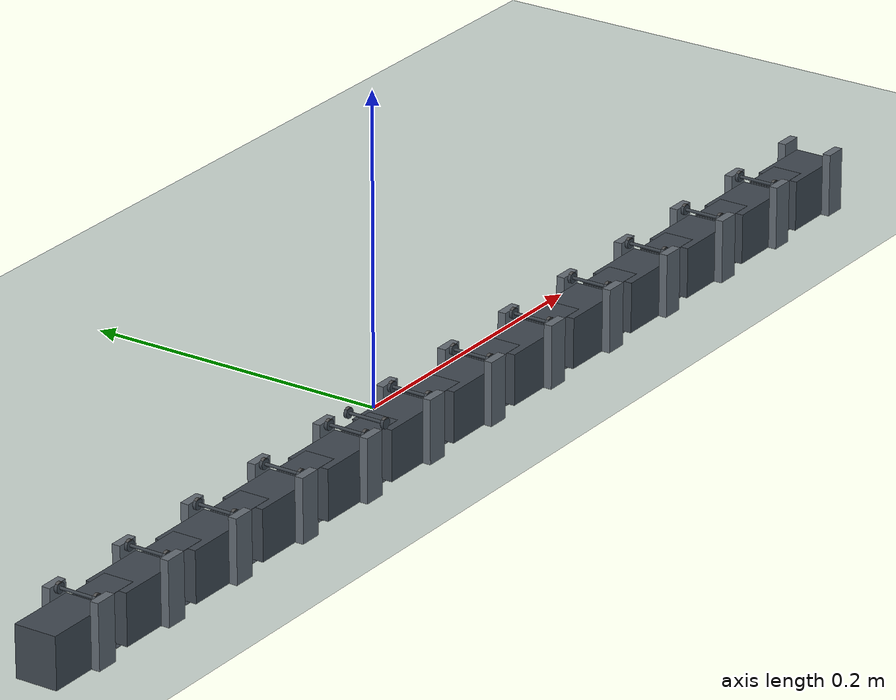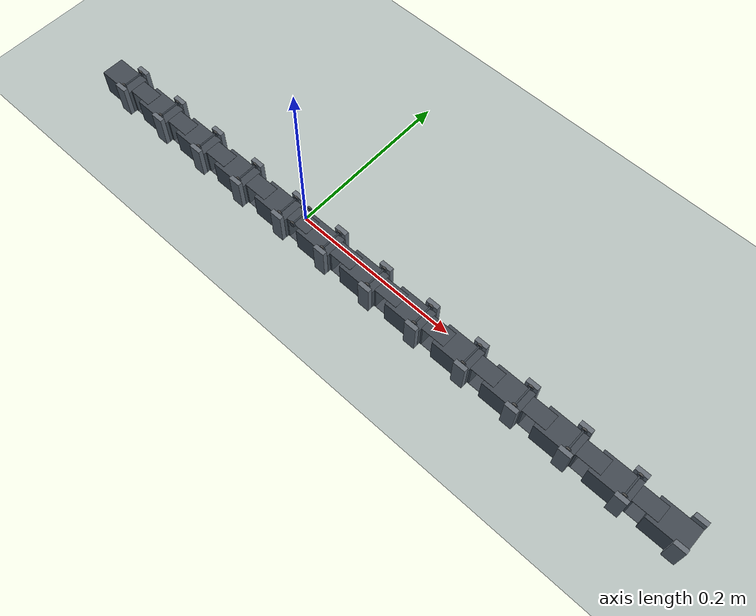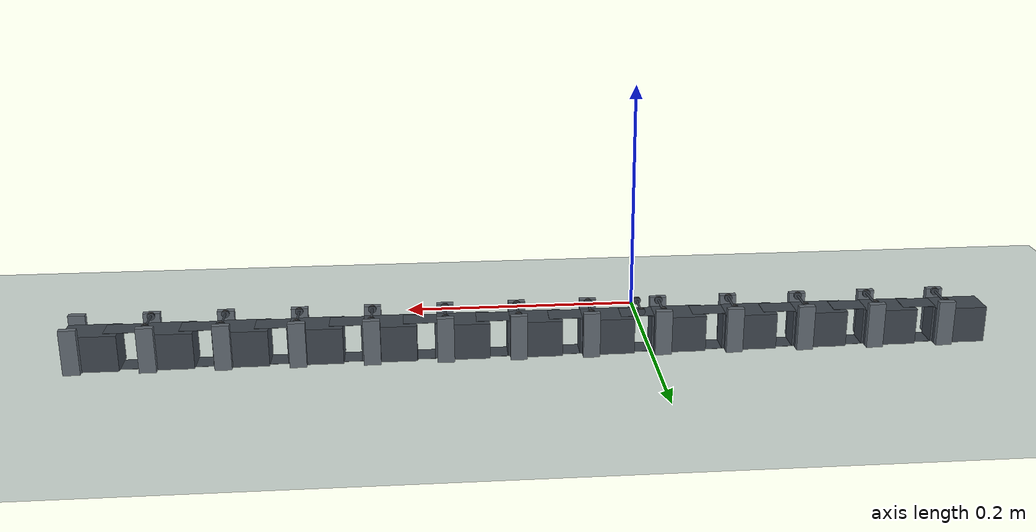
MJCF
<mujoco model="snake scene">
  <include file="snake.xml"/>

  <statistic center="0.3 0 0.4" extent="0.8"/>

  <visual>
    <headlight diffuse="0.6 0.6 0.6" ambient="0.1 0.1 0.1" specular="0 0 0"/>
    <rgba haze="0.15 0.25 0.35 1"/>
    <global azimuth="120" elevation="-20"/>
  </visual>

  <asset>
    <texture type="skybox" builtin="gradient" rgb1="0.3 0.5 0.7" rgb2="0 0 0" width="512" height="3072"/>
    <texture type="2d" name="groundplane" builtin="checker" mark="edge" rgb1="0.2 0.3 0.4" rgb2="0.1 0.2 0.3"
      markrgb="0.8 0.8 0.8" width="300" height="300"/>
    <material name="groundplane" texture="groundplane" texuniform="true" texrepeat="5 5" reflectance="0.2"/>
  </asset>

  <worldbody>
    <light pos="0 0 1.5" dir="0 0 -1" directional="true"/>
    <geom name="floor" size="0 0 0.05" type="plane" material="groundplane"/>
  </worldbody>

</mujoco>

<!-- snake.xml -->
<mujoco model="snake">
  <compiler angle="radian" meshdir="assets" autolimits="true"/>

  <option integrator="implicitfast"/>

  <default>
    <geom friction="3 0.005 0.0001" />
  </default>
  <asset>
    <!-- ナシ -->
  </asset>
  <worldbody>
    <light name="spotlight" mode="targetbodycom" target="frame_0-1" pos="0 -1 2"/>

    <!--  ================= SNAKE ================= /-->
    <body name="frame_0-1" pos="0.5 0 0" quat="0 0 1 0">
      <camera name="track" mode="trackcom" pos="0.5 1 1" xyaxes="-1 0 0 0 -1 1"/>
      <joint type="free"/>
      <geom density="1000" type="box" size=".0235 .014 .01675" pos= ".0235 0 .02675 " rgba="0.3 0.3 0.3 1"  /><!--motor box(head)-->
      <geom density="1000" type="box" size=".0075 .00275 .021" pos= ".0075 -.01675 .0225 " rgba="0.5 0.5 0.5 1" /><!--side box-->
      <geom density="1000" type="box" size=".0075 .00275 .021" pos= ".0075 .01675 .0225 " rgba="0.5 0.5 0.5 1" /><!--side box-->

      <body name="frame0-2" pos="0.5 0 0"  >
      <joint  pos=".0075 -.014 .0035" axis="0 1 0" limited="false" /><!--wheel joint-->
      <geom density="1000" type="cylinder" size=".0035" fromto= ".0075 -.014 .0035 .0075 -.012 .0035" rgba="0.3 0.3 0.3 1" /><!--Left wheel-->
      <geom density="1000" type="cylinder" size=".0035" fromto= ".0075 .014 .0035 .0075 .012 .0035" rgba="0.3 0.3 0.3 1" /><!--Right wheel-->
      <geom density="1000" type="cylinder" size=".001" fromto= ".0075 -.012 .0035 .0075 .012 .0035" rgba="0.3 0.3 0.3 1" /><!--wheel axle-->
      </body>

      <body name="frame1_1" pos="0.035 0 0"  >
        <joint name="Actuator1" pos="0 0 0" axis="0 0 1" limited="true" range="-3 3"/>
        <geom density="1000" type="box" size=".015 .01 .0001" pos= ".015 0 .04355 " rgba="0.3 0.3 0.3 1" /><!--connecter-->
        <geom density="1000" type="box" size=".015 .01 .0001" pos= ".015 0 .00905 " rgba="0.3 0.3 0.3 1" /><!--connecter-->
        <geom density="1000" type="box" size=".001 .01 .01675" pos= ".029 0 .02675 " rgba="0.3 0.3 0.3 1" /><!--connecter-->
        <geom density="1000" type="box" size=".0235 .014 .01675" pos= ".0535 0 .02675 " rgba="0.3 0.3 0.3 1" /><!--motor box-->
        <geom density="1000" type="box" size=".0075 .00275 .021" pos= ".0375 -.01675 .0225 " rgba="0.5 0.5 0.5 1" /><!--side box-->
        <geom density="1000" type="box" size=".0075 .00275 .021" pos= ".0375 .01675 .0225 " rgba="0.5 0.5 0.5 1" /><!--side box-->

        <body name="frame1-2" pos="0.03 0 0"  >
        <joint  pos=".0075 -.014 .0035" axis="0 1 0" limited="false" />
        <geom density="1000" type="cylinder" size=".0035" fromto= ".0075 -.014 .0035 .0075 -.012 .0035" rgba="0.3 0.3 0.3 1" /><!--Left wheel-->
        <geom density="1000" type="cylinder" size=".0035" fromto= ".0075 .014 .0035 .0075 .012 .0035" rgba="0.3 0.3 0.3 1" /><!--Right wheel-->
        <geom density="1000" type="cylinder" size=".001" fromto= ".0075 -.012 .0035 .0075 .012 .0035" rgba="0.3 0.3 0.3 1" /><!--wheel axle-->
        </body>

        <body name="frame2_1" pos="0.065 0 0"  >
          <joint name="Actuator2" pos="0 0 0" axis="0 0 1" limited="true" range="-3 3"/>
          <geom density="1000" type="box" size=".015 .01 .0001" pos= ".015 0 .04355 " rgba="0.3 0.3 0.3 1" /><!--connecter-->
          <geom density="1000" type="box" size=".015 .01 .0001" pos= ".015 0 .00905 " rgba="0.3 0.3 0.3 1" /><!--connecter-->
          <geom density="1000" type="box" size=".001 .01 .01675" pos= ".029 0 .02675 " rgba="0.3 0.3 0.3 1" /><!--connecter-->
          <geom density="1000" type="box" size=".0235 .014 .01675" pos= ".0535 0 .02675 " rgba="0.3 0.3 0.3 1" /><!--motor box-->
          <geom density="1000" type="box" size=".0075 .00275 .021" pos= ".0375 -.01675 .0225 " rgba="0.5 0.5 0.5 1" /><!--side box-->
          <geom density="1000" type="box" size=".0075 .00275 .021" pos= ".0375 .01675 .0225 " rgba="0.5 0.5 0.5 1" /><!--side box-->

          <body name="frame2-2" pos="0.03 0 0"  >
          <joint  pos=".0075 -.014 .0035" axis="0 1 0" limited="false" />
          <geom density="1000" type="cylinder" size=".0035" fromto= ".0075 -.014 .0035 .0075 -.012 .0035" rgba="0.3 0.3 0.3 1" /><!--Left wheel-->
          <geom density="1000" type="cylinder" size=".0035" fromto= ".0075 .014 .0035 .0075 .012 .0035" rgba="0.3 0.3 0.3 1" /><!--Right wheel-->
          <geom density="1000" type="cylinder" size=".001" fromto= ".0075 -.012 .0035 .0075 .012 .0035" rgba="0.3 0.3 0.3 1" /><!--wheel axle-->
          </body>

          <body name="frame3_1" pos="0.065 0 0"  >
            <joint name="Actuator3" pos="0 0 0" axis="0 0 1" limited="true" range="-3 3"/>
            <geom density="1000" type="box" size=".015 .01 .0001" pos= ".015 0 .04355 " rgba="0.3 0.3 0.3 1" /><!--connecter-->
            <geom density="1000" type="box" size=".015 .01 .0001" pos= ".015 0 .00905 " rgba="0.3 0.3 0.3 1" /><!--connecter-->
            <geom density="1000" type="box" size=".001 .01 .01675" pos= ".029 0 .02675 " rgba="0.3 0.3 0.3 1" /><!--connecter-->
            <geom density="1000" type="box" size=".0235 .014 .01675" pos= ".0535 0 .02675 " rgba="0.3 0.3 0.3 1" /><!--motor box-->
            <geom density="1000" type="box" size=".0075 .00275 .021" pos= ".0375 -.01675 .0225 " rgba="0.5 0.5 0.5 1" /><!--side box-->
            <geom density="1000" type="box" size=".0075 .00275 .021" pos= ".0375 .01675 .0225 " rgba="0.5 0.5 0.5 1" /><!--side box-->

            <body name="frame3-2" pos="0.03 0 0"  >
            <joint  pos=".0075 -.014 .0035" axis="0 1 0" limited="false" />
            <geom density="1000" type="cylinder" size=".0035" fromto= ".0075 -.014 .0035 .0075 -.012 .0035" rgba="0.3 0.3 0.3 1" /><!--Left wheel-->
            <geom density="1000" type="cylinder" size=".0035" fromto= ".0075 .014 .0035 .0075 .012 .0035" rgba="0.3 0.3 0.3 1" /><!--Right wheel-->
            <geom density="1000" type="cylinder" size=".001" fromto= ".0075 -.012 .0035 .0075 .012 .0035" rgba="0.3 0.3 0.3 1" /><!--wheel axle-->
            </body>

            <body name="frame4_1" pos="0.065 0 0"  >
              <joint name="Actuator4" pos="0 0 0" axis="0 0 1" limited="true" range="-3 3"/>
              <geom density="1000" type="box" size=".015 .01 .0001" pos= ".015 0 .04355 " rgba="0.3 0.3 0.3 1" /><!--connecter-->
              <geom density="1000" type="box" size=".015 .01 .0001" pos= ".015 0 .00905 " rgba="0.3 0.3 0.3 1" /><!--connecter-->
              <geom density="1000" type="box" size=".001 .01 .01675" pos= ".029 0 .02675 " rgba="0.3 0.3 0.3 1" /><!--connecter-->
              <geom density="1000" type="box" size=".0235 .014 .01675" pos= ".0535 0 .02675 " rgba="0.3 0.3 0.3 1" /><!--motor box-->
              <geom density="1000" type="box" size=".0075 .00275 .021" pos= ".0375 -.01675 .0225 " rgba="0.5 0.5 0.5 1" /><!--side box-->
              <geom density="1000" type="box" size=".0075 .00275 .021" pos= ".0375 .01675 .0225 " rgba="0.5 0.5 0.5 1" /><!--side box-->

              <body name="frame4-2" pos="0.03 0 0"  >
              <joint  pos=".0075 -.014 .0035" axis="0 1 0" limited="false" />
              <geom density="1000" type="cylinder" size=".0035" fromto= ".0075 -.014 .0035 .0075 -.012 .0035" rgba="0.3 0.3 0.3 1" /><!--Left wheel-->
              <geom density="1000" type="cylinder" size=".0035" fromto= ".0075 .014 .0035 .0075 .012 .0035" rgba="0.3 0.3 0.3 1" /><!--Right wheel-->
              <geom density="1000" type="cylinder" size=".001" fromto= ".0075 -.012 .0035 .0075 .012 .0035" rgba="0.3 0.3 0.3 1" /><!--wheel axle-->
              </body>

              <body name="frame5_1" pos="0.065 0 0"  >
                <joint name="Actuator5" pos="0 0 0" axis="0 0 1" limited="true" range="-3 3"/>
                <geom density="1000" type="box" size=".015 .01 .0001" pos= ".015 0 .04355 " rgba="0.3 0.3 0.3 1" /><!--connecter-->
                <geom density="1000" type="box" size=".015 .01 .0001" pos= ".015 0 .00905 " rgba="0.3 0.3 0.3 1" /><!--connecter-->
                <geom density="1000" type="box" size=".001 .01 .01675" pos= ".029 0 .02675 " rgba="0.3 0.3 0.3 1" /><!--connecter-->
                <geom density="1000" type="box" size=".0235 .014 .01675" pos= ".0535 0 .02675 " rgba="0.3 0.3 0.3 1" /><!--motor box-->
                <geom density="1000" type="box" size=".0075 .00275 .021" pos= ".0375 -.01675 .0225 " rgba="0.5 0.5 0.5 1" /><!--side box-->
                <geom density="1000" type="box" size=".0075 .00275 .021" pos= ".0375 .01675 .0225 " rgba="0.5 0.5 0.5 1" /><!--side box-->

                <body name="frame5-2" pos="0.03 0 0"  >
                <joint  pos=".0075 -.014 .0035" axis="0 1 0" limited="false" />
                <geom density="1000" type="cylinder" size=".0035" fromto= ".0075 -.014 .0035 .0075 -.012 .0035" rgba="0.3 0.3 0.3 1" /><!--Left wheel-->
                <geom density="1000" type="cylinder" size=".0035" fromto= ".0075 .014 .0035 .0075 .012 .0035" rgba="0.3 0.3 0.3 1" /><!--Right wheel-->
                <geom density="1000" type="cylinder" size=".001" fromto= ".0075 -.012 .0035 .0075 .012 .0035" rgba="0.3 0.3 0.3 1" /><!--wheel axle-->
                </body>

                <body name="frame6_1" pos="0.065 0 0"  >
                  <joint name="Actuator6" pos="0 0 0" axis="0 0 1" limited="true" range="-3 3"/>
                  <geom density="1000" type="box" size=".015 .01 .0001" pos= ".015 0 .04355 " rgba="0.3 0.3 0.3 1" /><!--connecter-->
                  <geom density="1000" type="box" size=".015 .01 .0001" pos= ".015 0 .00905 " rgba="0.3 0.3 0.3 1" /><!--connecter-->
                  <geom density="1000" type="box" size=".001 .01 .01675" pos= ".029 0 .02675 " rgba="0.3 0.3 0.3 1" /><!--connecter-->
                  <geom density="1000" type="box" size=".0235 .014 .01675" pos= ".0535 0 .02675 " rgba="0.3 0.3 0.3 1" /><!--motor box-->
                  <geom density="1000" type="box" size=".0075 .00275 .021" pos= ".0375 -.01675 .0225 " rgba="0.5 0.5 0.5 1" /><!--side box-->
                  <geom density="1000" type="box" size=".0075 .00275 .021" pos= ".0375 .01675 .0225 " rgba="0.5 0.5 0.5 1" /><!--side box-->

                  <body name="frame6-2" pos="0.03 0 0"  >
                  <joint  pos=".0075 -.014 .0035" axis="0 1 0" limited="false" />
                  <geom density="1000" type="cylinder" size=".0035" fromto= ".0075 -.014 .0035 .0075 -.012 .0035" rgba="0.3 0.3 0.3 1" /><!--Left wheel-->
                  <geom density="1000" type="cylinder" size=".0035" fromto= ".0075 .014 .0035 .0075 .012 .0035" rgba="0.3 0.3 0.3 1" /><!--Right wheel-->
                  <geom density="1000" type="cylinder" size=".001" fromto= ".0075 -.012 .0035 .0075 .012 .0035" rgba="0.3 0.3 0.3 1" /><!--wheel axle-->
                  </body>

                  <body name="frame7_1" pos="0.065 0 0"  >
                    <joint name="Actuator7" pos="0 0 0" axis="0 0 1" limited="true" range="-3 3"/>
                    <geom density="1000" type="box" size=".015 .01 .0001" pos= ".015 0 .04355 " rgba="0.3 0.3 0.3 1" /><!--connecter-->
                    <geom density="1000" type="box" size=".015 .01 .0001" pos= ".015 0 .00905 " rgba="0.3 0.3 0.3 1" /><!--connecter-->
                    <geom density="1000" type="box" size=".001 .01 .01675" pos= ".029 0 .02675 " rgba="0.3 0.3 0.3 1" /><!--connecter-->
                    <geom density="1000" type="box" size=".0235 .014 .01675" pos= ".0535 0 .02675 " rgba="0.3 0.3 0.3 1" /><!--motor box-->
                    <geom density="1000" type="box" size=".0075 .00275 .021" pos= ".0375 -.01675 .0225 " rgba="0.5 0.5 0.5 1" /><!--side box-->
                    <geom density="1000" type="box" size=".0075 .00275 .021" pos= ".0375 .01675 .0225 " rgba="0.5 0.5 0.5 1" /><!--side box-->

                    <body name="frame7-2" pos="0.03 0 0"  >
                    <joint  pos=".0075 -.014 .0035" axis="0 1 0" limited="false" />
                    <geom density="1000" type="cylinder" size=".0035" fromto= ".0075 -.014 .0035 .0075 -.012 .0035" rgba="0.3 0.3 0.3 1" /><!--Left wheel-->
                    <geom density="1000" type="cylinder" size=".0035" fromto= ".0075 .014 .0035 .0075 .012 .0035" rgba="0.3 0.3 0.3 1" /><!--Right wheel-->
                    <geom density="1000" type="cylinder" size=".001" fromto= ".0075 -.012 .0035 .0075 .012 .0035" rgba="0.3 0.3 0.3 1" /><!--wheel axle-->
                    </body>

                    <body name="frame8_1" pos="0.065 0 0"  >
                      <joint name="Actuator8" pos="0 0 0" axis="0 0 1" limited="true" range="-3 3"/>
                      <geom density="1000" type="box" size=".015 .01 .0001" pos= ".015 0 .04355 " rgba="0.3 0.3 0.3 1" /><!--connecter-->
                      <geom density="1000" type="box" size=".015 .01 .0001" pos= ".015 0 .00905 " rgba="0.3 0.3 0.3 1" /><!--connecter-->
                      <geom density="1000" type="box" size=".001 .01 .01675" pos= ".029 0 .02675 " rgba="0.3 0.3 0.3 1" /><!--connecter-->
                      <geom density="1000" type="box" size=".0235 .014 .01675" pos= ".0535 0 .02675 " rgba="0.3 0.3 0.3 1" /><!--motor box-->
                      <geom density="1000" type="box" size=".0075 .00275 .021" pos= ".0375 -.01675 .0225 " rgba="0.5 0.5 0.5 1" /><!--side box-->
                      <geom density="1000" type="box" size=".0075 .00275 .021" pos= ".0375 .01675 .0225 " rgba="0.5 0.5 0.5 1" /><!--side box-->

                      <body name="frame8-2" pos="0.03 0 0"  >
                      <joint  pos=".0075 -.014 .0035" axis="0 1 0" limited="false" />
                      <geom density="1000" type="cylinder" size=".0035" fromto= ".0075 -.014 .0035 .0075 -.012 .0035" rgba="0.3 0.3 0.3 1" /><!--Left wheel-->
                      <geom density="1000" type="cylinder" size=".0035" fromto= ".0075 .014 .0035 .0075 .012 .0035" rgba="0.3 0.3 0.3 1" /><!--Right wheel-->
                      <geom density="1000" type="cylinder" size=".001" fromto= ".0075 -.012 .0035 .0075 .012 .0035" rgba="0.3 0.3 0.3 1" /><!--wheel axle-->
                      </body>

                      <body name="frame9_1" pos="0.065 0 0"  >
                        <joint name="Actuator9" pos="0 0 0" axis="0 0 1" limited="true" range="-3 3"/>
                        <geom density="1000" type="box" size=".015 .01 .0001" pos= ".015 0 .04355 " rgba="0.3 0.3 0.3 1" /><!--connecter-->
                        <geom density="1000" type="box" size=".015 .01 .0001" pos= ".015 0 .00905 " rgba="0.3 0.3 0.3 1" /><!--connecter-->
                        <geom density="1000" type="box" size=".001 .01 .01675" pos= ".029 0 .02675 " rgba="0.3 0.3 0.3 1" /><!--connecter-->
                        <geom density="1000" type="box" size=".0235 .014 .01675" pos= ".0535 0 .02675 " rgba="0.3 0.3 0.3 1" /><!--motor box-->
                        <geom density="1000" type="box" size=".0075 .00275 .021" pos= ".0375 -.01675 .0225 " rgba="0.5 0.5 0.5 1" /><!--side box-->
                        <geom density="1000" type="box" size=".0075 .00275 .021" pos= ".0375 .01675 .0225 " rgba="0.5 0.5 0.5 1" /><!--side box-->

                        <body name="frame9-2" pos="0.03 0 0 " >
                        <joint  pos=".0075 -.014 .0035" axis="0 1 0" limited="false" />
                        <geom density="1000" type="cylinder" size=".0035" fromto= ".0075 -.014 .0035 .0075 -.012 .0035" rgba="0.3 0.3 0.3 1" /><!--Left wheel-->
                        <geom density="1000" type="cylinder" size=".0035" fromto= ".0075 .014 .0035 .0075 .012 .0035" rgba="0.3 0.3 0.3 1" /><!--Right wheel-->
                        <geom density="1000" type="cylinder" size=".001" fromto= ".0075 -.012 .0035 .0075 .012 .0035" rgba="0.3 0.3 0.3 1" /><!--wheel axle-->
                        </body>

                        <body name="frame10_1" pos="0.065 0 0"  >
                          <joint name="Actuator10" pos="0 0 0" axis="0 0 1" limited="true" range="-3 3"/>
                          <geom density="1000" type="box" size=".015 .01 .0001" pos= ".015 0 .04355 " rgba="0.3 0.3 0.3 1" /><!--connecter-->
                          <geom density="1000" type="box" size=".015 .01 .0001" pos= ".015 0 .00905 " rgba="0.3 0.3 0.3 1" /><!--connecter-->
                          <geom density="1000" type="box" size=".001 .01 .01675" pos= ".029 0 .02675 " rgba="0.3 0.3 0.3 1" /><!--connecter-->
                          <geom density="1000" type="box" size=".0235 .014 .01675" pos= ".0535 0 .02675 " rgba="0.3 0.3 0.3 1" /><!--motor box-->
                          <geom density="1000" type="box" size=".0075 .00275 .021" pos= ".0375 -.01675 .0225 " rgba="0.5 0.5 0.5 1" /><!--side box-->
                          <geom density="1000" type="box" size=".0075 .00275 .021" pos= ".0375 .01675 .0225 " rgba="0.5 0.5 0.5 1" /><!--side box-->

                          <body name="frame10-2" pos="0.03 0 0"  >
                          <joint  pos=".0075 -.014 .0035" axis="0 1 0" limited="false" />
                          <geom density="1000" type="cylinder" size=".0035" fromto= ".0075 -.014 .0035 .0075 -.012 .0035" rgba="0.3 0.3 0.3 1" /><!--Left wheel-->
                          <geom density="1000" type="cylinder" size=".0035" fromto= ".0075 .014 .0035 .0075 .012 .0035" rgba="0.3 0.3 0.3 1" /><!--Right wheel-->
                          <geom density="1000" type="cylinder" size=".001" fromto= ".0075 -.012 .0035 .0075 .012 .0035" rgba="0.3 0.3 0.3 1" /><!--wheel axle-->
                          </body>

                          <body name="frame11_1" pos="0.065 0 0"  >
                            <joint name="Actuator11" pos="0 0 0" axis="0 0 1" limited="true" range="-3 3"/>
                            <geom density="1000" type="box" size=".015 .01 .0001" pos= ".015 0 .04355 " rgba="0.3 0.3 0.3 1" /><!--connecter-->
                            <geom density="1000" type="box" size=".015 .01 .0001" pos= ".015 0 .00905 " rgba="0.3 0.3 0.3 1" /><!--connecter-->
                            <geom density="1000" type="box" size=".001 .01 .01675" pos= ".029 0 .02675 " rgba="0.3 0.3 0.3 1" /><!--connecter-->
                            <geom density="1000" type="box" size=".0235 .014 .01675" pos= ".0535 0 .02675 " rgba="0.3 0.3 0.3 1" /><!--motor box-->
                            <geom density="1000" type="box" size=".0075 .00275 .021" pos= ".0375 -.01675 .0225 " rgba="0.5 0.5 0.5 1" /><!--side box-->
                            <geom density="1000" type="box" size=".0075 .00275 .021" pos= ".0375 .01675 .0225 " rgba="0.5 0.5 0.5 1" /><!--side box-->

                            <body name="frame11-2" pos="0.03 0 0"  >
                            <joint  pos=".0075 -.014 .0035" axis="0 1 0" limited="false" />
                            <geom density="1000" type="cylinder" size=".0035" fromto= ".0075 -.014 .0035 .0075 -.012 .0035" rgba="0.3 0.3 0.3 1" /><!--Left wheel-->
                            <geom density="1000" type="cylinder" size=".0035" fromto= ".0075 .014 .0035 .0075 .012 .0035" rgba="0.3 0.3 0.3 1" /><!--Right wheel-->
                            <geom density="1000" type="cylinder" size=".001" fromto= ".0075 -.012 .0035 .0075 .012 .0035" rgba="0.3 0.3 0.3 1" /><!--wheel axle-->
                            </body>

                            <body name="frame12_1" pos="0.065 0 0"  >
                              <joint name="Actuator12" pos="0 0 0" axis="0 0 1" limited="true" range="-3 3"/>
                              <geom density="1000" type="box" size=".015 .01 .0001" pos= ".015 0 .04355 " rgba="0.3 0.3 0.3 1" /><!--connecter-->
                              <geom density="1000" type="box" size=".015 .01 .0001" pos= ".015 0 .00905 " rgba="0.3 0.3 0.3 1" /><!--connecter-->
                              <geom density="1000" type="box" size=".001 .01 .01675" pos= ".029 0 .02675 " rgba="0.3 0.3 0.3 1" /><!--connecter-->
                              <geom density="1000" type="box" size=".0235 .014 .01675" pos= ".0535 0 .02675 " rgba="0.3 0.3 0.3 1" /><!--motor box-->
                              <geom density="1000" type="box" size=".0075 .00275 .021" pos= ".0375 -.01675 .0225 " rgba="0.5 0.5 0.5 1" /><!--side box-->
                              <geom density="1000" type="box" size=".0075 .00275 .021" pos= ".0375 .01675 .0225 " rgba="0.5 0.5 0.5 1" /><!--side box-->

                              <body name="frame12-2" pos="0.03 0 0" >
                              <joint  pos=".0075 -.014 .0035" axis="0 1 0" limited="false" />
                              <geom density="1000" type="cylinder" size=".0035" fromto= ".0075 -.014 .0035 .0075 -.012 .0035" rgba="0.3 0.3 0.3 1" /><!--Left wheel-->
                              <geom density="1000" type="cylinder" size=".0035" fromto= ".0075 .014 .0035 .0075 .012 .0035" rgba="0.3 0.3 0.3 1" /><!--Right wheel-->
                              <geom density="1000" type="cylinder" size=".001" fromto= ".0075 -.012 .0035 .0075 .012 .0035" rgba="0.3 0.3 0.3 1" /><!--wheel axle-->
                              </body>
                            </body>
                          </body>
                        </body>
                      </body>
                    </body>
                  </body>
                </body>
              </body>
            </body>
          </body>
        </body>
      </body>
    </body>
  </worldbody>

  <actuator>
    <position name="Actuator1" joint="Actuator1" kp = "0.1" ctrllimited="true" ctrlrange="-3 3"/>
    <position name="Actuator2" joint="Actuator2" kp = "0.1" ctrllimited="true" ctrlrange="-3 3"/>
    <position name="Actuator3" joint="Actuator3" kp = "0.1" ctrllimited="true" ctrlrange="-3 3"/>
    <position name="Actuator4" joint="Actuator4" kp = "0.1" ctrllimited="true" ctrlrange="-3 3"/>
    <position name="Actuator5" joint="Actuator5" kp = "0.1" ctrllimited="true" ctrlrange="-3 3"/>
    <position name="Actuator6" joint="Actuator6" kp = "0.1" ctrllimited="true" ctrlrange="-3 3"/>
    <position name="Actuator7" joint="Actuator7" kp = "0.1" ctrllimited="true" ctrlrange="-3 3"/>
    <position name="Actuator8" joint="Actuator8" kp = "0.1" ctrllimited="true" ctrlrange="-3 3"/>
    <position name="Actuator9" joint="Actuator9" kp = "0.1" ctrllimited="true" ctrlrange="-3 3"/>
    <position name="Actuator10" joint="Actuator10" kp = "0.1" ctrllimited="true" ctrlrange="-3 3"/>
    <position name="Actuator11" joint="Actuator11" kp = "0.1" ctrllimited="true" ctrlrange="-3 3"/>
    <position name="Actuator12" joint="Actuator12" kp = "0.1" ctrllimited="true" ctrlrange="-3 3"/>
  </actuator>
</mujoco>
